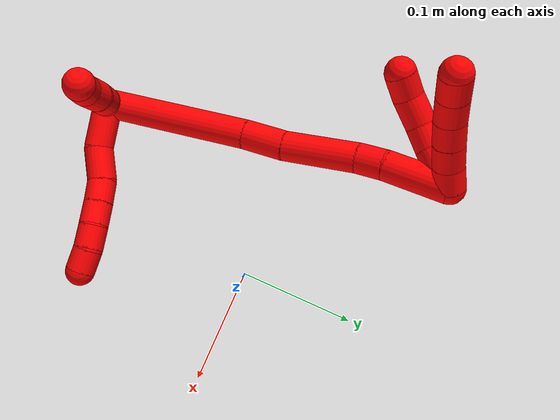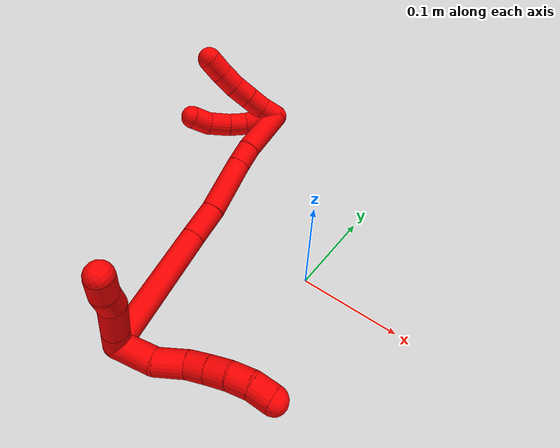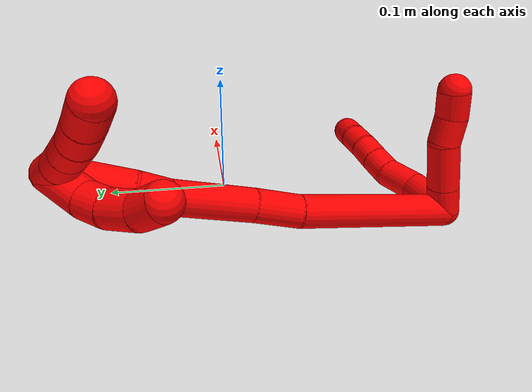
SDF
<sdf version="1.7">
 <world name="default">
  <model name="2">
   <static>0</static>
   <link name="2">
    <collision name="collision-cylinder-e_1_2_8">
     <pose>0.017766 0.00372 -0.008662 -2.73595 1.08297 -2.48267</pose>
     <geometry><cylinder><radius>0.0125</radius><length>0.040224</length></cylinder></geometry>
     <surface>
      <friction><ode><mu>1.16</mu><mu2>1.16</mu2><slip1>0</slip1><slip2>0</slip2></ode></friction>
      <contact><ode><kp>1e+06</kp><kd>1</kd><max_vel>0</max_vel><min_depth>0.001</min_depth></ode></contact>
     </surface>
    </collision>
    <visual name="visual-cylinder-e_1_2_8">
     <pose>0.017766 0.00372 -0.008662 -2.73595 1.08297 -2.48267</pose>
     <geometry><cylinder><radius>0.0125</radius><length>0.040224</length></cylinder></geometry>
     <material><ambient>1 0 0 1</ambient></material>
    </visual>
    <collision name="collision-cylinder-e_2_8_9">
     <pose>0.047241 0.014655 -0.022384 -2.18246 0.925559 -1.5293</pose>
     <geometry><cylinder><radius>0.0125</radius><length>0.02931</length></cylinder></geometry>
     <surface>
      <friction><ode><mu>1.16</mu><mu2>1.16</mu2><slip1>0</slip1><slip2>0</slip2></ode></friction>
      <contact><ode><kp>1e+06</kp><kd>1</kd><max_vel>0</max_vel><min_depth>0.001</min_depth></ode></contact>
     </surface>
    </collision>
    <visual name="visual-cylinder-e_2_8_9">
     <pose>0.047241 0.014655 -0.022384 -2.18246 0.925559 -1.5293</pose>
     <geometry><cylinder><radius>0.0125</radius><length>0.02931</length></cylinder></geometry>
     <material><ambient>1 0 0 1</ambient></material>
    </visual>
    <collision name="collision-cylinder-e_3_9_10">
     <pose>0.06833 0.024646 -0.029784 -2.27093 1.20162 -1.9491</pose>
     <geometry><cylinder><radius>0.0125</radius><length>0.020115</length></cylinder></geometry>
     <surface>
      <friction><ode><mu>1.16</mu><mu2>1.16</mu2><slip1>0</slip1><slip2>0</slip2></ode></friction>
      <contact><ode><kp>1e+06</kp><kd>1</kd><max_vel>0</max_vel><min_depth>0.001</min_depth></ode></contact>
     </surface>
    </collision>
    <visual name="visual-cylinder-e_3_9_10">
     <pose>0.06833 0.024646 -0.029784 -2.27093 1.20162 -1.9491</pose>
     <geometry><cylinder><radius>0.0125</radius><length>0.020115</length></cylinder></geometry>
     <material><ambient>1 0 0 1</ambient></material>
    </visual>
    <collision name="collision-cylinder-e_4_10_11">
     <pose>0.087164 0.029837 -0.034416 -2.33051 1.23202 -2.05122</pose>
     <geometry><cylinder><radius>0.0125</radius><length>0.020048</length></cylinder></geometry>
     <surface>
      <friction><ode><mu>1.16</mu><mu2>1.16</mu2><slip1>0</slip1><slip2>0</slip2></ode></friction>
      <contact><ode><kp>1e+06</kp><kd>1</kd><max_vel>0</max_vel><min_depth>0.001</min_depth></ode></contact>
     </surface>
    </collision>
    <visual name="visual-cylinder-e_4_10_11">
     <pose>0.087164 0.029837 -0.034416 -2.33051 1.23202 -2.05122</pose>
     <geometry><cylinder><radius>0.0125</radius><length>0.020048</length></cylinder></geometry>
     <material><ambient>1 0 0 1</ambient></material>
    </visual>
    <collision name="collision-cylinder-e_5_11_12">
     <pose>0.105824 0.034129 -0.040404 -2.67153 1.14796 -2.43225</pose>
     <geometry><cylinder><radius>0.0125</radius><length>0.02019</length></cylinder></geometry>
     <surface>
      <friction><ode><mu>1.16</mu><mu2>1.16</mu2><slip1>0</slip1><slip2>0</slip2></ode></friction>
      <contact><ode><kp>1e+06</kp><kd>1</kd><max_vel>0</max_vel><min_depth>0.001</min_depth></ode></contact>
     </surface>
    </collision>
    <visual name="visual-cylinder-e_5_11_12">
     <pose>0.105824 0.034129 -0.040404 -2.67153 1.14796 -2.43225</pose>
     <geometry><cylinder><radius>0.0125</radius><length>0.02019</length></cylinder></geometry>
     <material><ambient>1 0 0 1</ambient></material>
    </visual>
    <collision name="collision-cylinder-e_6_12_6">
     <pose>0.123772 0.036248 -0.049062 -3.0926 1.05376 -3.0574</pose>
     <geometry><cylinder><radius>0.0125</radius><length>0.020112</length></cylinder></geometry>
     <surface>
      <friction><ode><mu>1.16</mu><mu2>1.16</mu2><slip1>0</slip1><slip2>0</slip2></ode></friction>
      <contact><ode><kp>1e+06</kp><kd>1</kd><max_vel>0</max_vel><min_depth>0.001</min_depth></ode></contact>
     </surface>
    </collision>
    <visual name="visual-cylinder-e_6_12_6">
     <pose>0.123772 0.036248 -0.049062 -3.0926 1.05376 -3.0574</pose>
     <geometry><cylinder><radius>0.0125</radius><length>0.020112</length></cylinder></geometry>
     <material><ambient>1 0 0 1</ambient></material>
    </visual>
    <collision name="collision-cylinder-e_1_2_13">
     <pose>0.005235 0.001854 0.009107 -0.200787 0.512972 -0.052824</pose>
     <geometry><cylinder><radius>0.0125</radius><length>0.021333</length></cylinder></geometry>
     <surface>
      <friction><ode><mu>1.16</mu><mu2>1.16</mu2><slip1>0</slip1><slip2>0</slip2></ode></friction>
      <contact><ode><kp>1e+06</kp><kd>1</kd><max_vel>0</max_vel><min_depth>0.001</min_depth></ode></contact>
     </surface>
    </collision>
    <visual name="visual-cylinder-e_1_2_13">
     <pose>0.005235 0.001854 0.009107 -0.200787 0.512972 -0.052824</pose>
     <geometry><cylinder><radius>0.0125</radius><length>0.021333</length></cylinder></geometry>
     <material><ambient>1 0 0 1</ambient></material>
    </visual>
    <collision name="collision-cylinder-e_2_13_14">
     <pose>0.019453 0.006775 0.033769 -0.194724 0.515509 -0.051484</pose>
     <geometry><cylinder><radius>0.0125</radius><length>0.036445</length></cylinder></geometry>
     <surface>
      <friction><ode><mu>1.16</mu><mu2>1.16</mu2><slip1>0</slip1><slip2>0</slip2></ode></friction>
      <contact><ode><kp>1e+06</kp><kd>1</kd><max_vel>0</max_vel><min_depth>0.001</min_depth></ode></contact>
     </surface>
    </collision>
    <visual name="visual-cylinder-e_2_13_14">
     <pose>0.019453 0.006775 0.033769 -0.194724 0.515509 -0.051484</pose>
     <geometry><cylinder><radius>0.0125</radius><length>0.036445</length></cylinder></geometry>
     <material><ambient>1 0 0 1</ambient></material>
    </visual>
    <collision name="collision-cylinder-e_3_14_15">
     <pose>0.033826 0.008581 0.05859 0.13528 0.522794 0.036241</pose>
     <geometry><cylinder><radius>0.0125</radius><length>0.021588</length></cylinder></geometry>
     <surface>
      <friction><ode><mu>1.16</mu><mu2>1.16</mu2><slip1>0</slip1><slip2>0</slip2></ode></friction>
      <contact><ode><kp>1e+06</kp><kd>1</kd><max_vel>0</max_vel><min_depth>0.001</min_depth></ode></contact>
     </surface>
    </collision>
    <visual name="visual-cylinder-e_3_14_15">
     <pose>0.033826 0.008581 0.05859 0.13528 0.522794 0.036241</pose>
     <geometry><cylinder><radius>0.0125</radius><length>0.021588</length></cylinder></geometry>
     <material><ambient>1 0 0 1</ambient></material>
    </visual>
    <collision name="collision-cylinder-e_4_15_5">
     <pose>0.043786 0.008474 0.077034 -0.125097 0.458946 -0.029257</pose>
     <geometry><cylinder><radius>0.0125</radius><length>0.020634</length></cylinder></geometry>
     <surface>
      <friction><ode><mu>1.16</mu><mu2>1.16</mu2><slip1>0</slip1><slip2>0</slip2></ode></friction>
      <contact><ode><kp>1e+06</kp><kd>1</kd><max_vel>0</max_vel><min_depth>0.001</min_depth></ode></contact>
     </surface>
    </collision>
    <visual name="visual-cylinder-e_4_15_5">
     <pose>0.043786 0.008474 0.077034 -0.125097 0.458946 -0.029257</pose>
     <geometry><cylinder><radius>0.0125</radius><length>0.020634</length></cylinder></geometry>
     <material><ambient>1 0 0 1</ambient></material>
    </visual>
    <collision name="collision-cylinder-e_1_2_16">
     <pose>-0.005019 0.062102 0.008862 -1.42905 -0.079834 0.06926</pose>
     <geometry><cylinder><radius>0.0125</radius><length>0.125863</length></cylinder></geometry>
     <surface>
      <friction><ode><mu>1.16</mu><mu2>1.16</mu2><slip1>0</slip1><slip2>0</slip2></ode></friction>
      <contact><ode><kp>1e+06</kp><kd>1</kd><max_vel>0</max_vel><min_depth>0.001</min_depth></ode></contact>
     </surface>
    </collision>
    <visual name="visual-cylinder-e_1_2_16">
     <pose>-0.005019 0.062102 0.008862 -1.42905 -0.079834 0.06926</pose>
     <geometry><cylinder><radius>0.0125</radius><length>0.125863</length></cylinder></geometry>
     <material><ambient>1 0 0 1</ambient></material>
    </visual>
    <collision name="collision-cylinder-e_2_16_17">
     <pose>-0.009357 0.141758 0.02139 -1.36491 0.037913 -0.030815</pose>
     <geometry><cylinder><radius>0.0125</radius><length>0.035892</length></cylinder></geometry>
     <surface>
      <friction><ode><mu>1.16</mu><mu2>1.16</mu2><slip1>0</slip1><slip2>0</slip2></ode></friction>
      <contact><ode><kp>1e+06</kp><kd>1</kd><max_vel>0</max_vel><min_depth>0.001</min_depth></ode></contact>
     </surface>
    </collision>
    <visual name="visual-cylinder-e_2_16_17">
     <pose>-0.009357 0.141758 0.02139 -1.36491 0.037913 -0.030815</pose>
     <geometry><cylinder><radius>0.0125</radius><length>0.035892</length></cylinder></geometry>
     <material><ambient>1 0 0 1</ambient></material>
    </visual>
    <collision name="collision-cylinder-e_3_17_18">
     <pose>-0.010447 0.189141 0.033361 -1.29926 -0.057087 0.043369</pose>
     <geometry><cylinder><radius>0.0125</radius><length>0.062027</length></cylinder></geometry>
     <surface>
      <friction><ode><mu>1.16</mu><mu2>1.16</mu2><slip1>0</slip1><slip2>0</slip2></ode></friction>
      <contact><ode><kp>1e+06</kp><kd>1</kd><max_vel>0</max_vel><min_depth>0.001</min_depth></ode></contact>
     </surface>
    </collision>
    <visual name="visual-cylinder-e_3_17_18">
     <pose>-0.010447 0.189141 0.033361 -1.29926 -0.057087 0.043369</pose>
     <geometry><cylinder><radius>0.0125</radius><length>0.062027</length></cylinder></geometry>
     <material><ambient>1 0 0 1</ambient></material>
    </visual>
    <collision name="collision-cylinder-e_4_18_19">
     <pose>-0.011216 0.229885 0.045264 -1.25238 0.086755 -0.062768</pose>
     <geometry><cylinder><radius>0.0125</radius><length>0.023075</length></cylinder></geometry>
     <surface>
      <friction><ode><mu>1.16</mu><mu2>1.16</mu2><slip1>0</slip1><slip2>0</slip2></ode></friction>
      <contact><ode><kp>1e+06</kp><kd>1</kd><max_vel>0</max_vel><min_depth>0.001</min_depth></ode></contact>
     </surface>
    </collision>
    <visual name="visual-cylinder-e_4_18_19">
     <pose>-0.011216 0.229885 0.045264 -1.25238 0.086755 -0.062768</pose>
     <geometry><cylinder><radius>0.0125</radius><length>0.023075</length></cylinder></geometry>
     <material><ambient>1 0 0 1</ambient></material>
    </visual>
    <collision name="collision-cylinder-e_5_19_1">
     <pose>-0.007352 0.26673 0.053918 -1.3782 0.108037 -0.089032</pose>
     <geometry><cylinder><radius>0.0125</radius><length>0.053143</length></cylinder></geometry>
     <surface>
      <friction><ode><mu>1.16</mu><mu2>1.16</mu2><slip1>0</slip1><slip2>0</slip2></ode></friction>
      <contact><ode><kp>1e+06</kp><kd>1</kd><max_vel>0</max_vel><min_depth>0.001</min_depth></ode></contact>
     </surface>
    </collision>
    <visual name="visual-cylinder-e_5_19_1">
     <pose>-0.007352 0.26673 0.053918 -1.3782 0.108037 -0.089032</pose>
     <geometry><cylinder><radius>0.0125</radius><length>0.053143</length></cylinder></geometry>
     <material><ambient>1 0 0 1</ambient></material>
    </visual>
    <collision name="collision-cylinder-e_1_1_20">
     <pose>-0.007967 0.288341 0.067296 0.478628 -0.355483 -0.087603</pose>
     <geometry><cylinder><radius>0.0125</radius><length>0.02</length></cylinder></geometry>
     <surface>
      <friction><ode><mu>1.16</mu><mu2>1.16</mu2><slip1>0</slip1><slip2>0</slip2></ode></friction>
      <contact><ode><kp>1e+06</kp><kd>1</kd><max_vel>0</max_vel><min_depth>0.001</min_depth></ode></contact>
     </surface>
    </collision>
    <visual name="visual-cylinder-e_1_1_20">
     <pose>-0.007967 0.288341 0.067296 0.478628 -0.355483 -0.087603</pose>
     <geometry><cylinder><radius>0.0125</radius><length>0.02</length></cylinder></geometry>
     <material><ambient>1 0 0 1</ambient></material>
    </visual>
    <collision name="collision-cylinder-e_2_20_21">
     <pose>-0.014171 0.280445 0.084549 0.381 -0.275888 -0.053529</pose>
     <geometry><cylinder><radius>0.0125</radius><length>0.02</length></cylinder></geometry>
     <surface>
      <friction><ode><mu>1.16</mu><mu2>1.16</mu2><slip1>0</slip1><slip2>0</slip2></ode></friction>
      <contact><ode><kp>1e+06</kp><kd>1</kd><max_vel>0</max_vel><min_depth>0.001</min_depth></ode></contact>
     </surface>
    </collision>
    <visual name="visual-cylinder-e_2_20_21">
     <pose>-0.014171 0.280445 0.084549 0.381 -0.275888 -0.053529</pose>
     <geometry><cylinder><radius>0.0125</radius><length>0.02</length></cylinder></geometry>
     <material><ambient>1 0 0 1</ambient></material>
    </visual>
    <collision name="collision-cylinder-e_3_21_22">
     <pose>-0.019764 0.273475 0.10244 0.362002 -0.290985 -0.053617</pose>
     <geometry><cylinder><radius>0.0125</radius><length>0.02</length></cylinder></geometry>
     <surface>
      <friction><ode><mu>1.16</mu><mu2>1.16</mu2><slip1>0</slip1><slip2>0</slip2></ode></friction>
      <contact><ode><kp>1e+06</kp><kd>1</kd><max_vel>0</max_vel><min_depth>0.001</min_depth></ode></contact>
     </surface>
    </collision>
    <visual name="visual-cylinder-e_3_21_22">
     <pose>-0.019764 0.273475 0.10244 0.362002 -0.290985 -0.053617</pose>
     <geometry><cylinder><radius>0.0125</radius><length>0.02</length></cylinder></geometry>
     <material><ambient>1 0 0 1</ambient></material>
    </visual>
    <collision name="collision-cylinder-e_4_22_23">
     <pose>-0.024677 0.267349 0.120798 0.282973 -0.205855 -0.029423</pose>
     <geometry><cylinder><radius>0.0125</radius><length>0.02</length></cylinder></geometry>
     <surface>
      <friction><ode><mu>1.16</mu><mu2>1.16</mu2><slip1>0</slip1><slip2>0</slip2></ode></friction>
      <contact><ode><kp>1e+06</kp><kd>1</kd><max_vel>0</max_vel><min_depth>0.001</min_depth></ode></contact>
     </surface>
    </collision>
    <visual name="visual-cylinder-e_4_22_23">
     <pose>-0.024677 0.267349 0.120798 0.282973 -0.205855 -0.029423</pose>
     <geometry><cylinder><radius>0.0125</radius><length>0.02</length></cylinder></geometry>
     <material><ambient>1 0 0 1</ambient></material>
    </visual>
    <collision name="collision-cylinder-e_5_23_4">
     <pose>-0.028033 0.262101 0.139787 0.256505 -0.131525 -0.016986</pose>
     <geometry><cylinder><radius>0.0125</radius><length>0.02</length></cylinder></geometry>
     <surface>
      <friction><ode><mu>1.16</mu><mu2>1.16</mu2><slip1>0</slip1><slip2>0</slip2></ode></friction>
      <contact><ode><kp>1e+06</kp><kd>1</kd><max_vel>0</max_vel><min_depth>0.001</min_depth></ode></contact>
     </surface>
    </collision>
    <visual name="visual-cylinder-e_5_23_4">
     <pose>-0.028033 0.262101 0.139787 0.256505 -0.131525 -0.016986</pose>
     <geometry><cylinder><radius>0.0125</radius><length>0.02</length></cylinder></geometry>
     <material><ambient>1 0 0 1</ambient></material>
    </visual>
    <collision name="collision-cylinder-e_1_1_24">
     <pose>-0.016819 0.280718 0.061805 1.3381 -0.787908 -0.635122</pose>
     <geometry><cylinder><radius>0.0125</radius><length>0.034796</length></cylinder></geometry>
     <surface>
      <friction><ode><mu>1.16</mu><mu2>1.16</mu2><slip1>0</slip1><slip2>0</slip2></ode></friction>
      <contact><ode><kp>1e+06</kp><kd>1</kd><max_vel>0</max_vel><min_depth>0.001</min_depth></ode></contact>
     </surface>
    </collision>
    <visual name="visual-cylinder-e_1_1_24">
     <pose>-0.016819 0.280718 0.061805 1.3381 -0.787908 -0.635122</pose>
     <geometry><cylinder><radius>0.0125</radius><length>0.034796</length></cylinder></geometry>
     <material><ambient>1 0 0 1</ambient></material>
    </visual>
    <collision name="collision-cylinder-e_2_24_25">
     <pose>-0.035254 0.261682 0.068503 1.07161 -0.646703 -0.392811</pose>
     <geometry><cylinder><radius>0.0125</radius><length>0.020252</length></cylinder></geometry>
     <surface>
      <friction><ode><mu>1.16</mu><mu2>1.16</mu2><slip1>0</slip1><slip2>0</slip2></ode></friction>
      <contact><ode><kp>1e+06</kp><kd>1</kd><max_vel>0</max_vel><min_depth>0.001</min_depth></ode></contact>
     </surface>
    </collision>
    <visual name="visual-cylinder-e_2_24_25">
     <pose>-0.035254 0.261682 0.068503 1.07161 -0.646703 -0.392811</pose>
     <geometry><cylinder><radius>0.0125</radius><length>0.020252</length></cylinder></geometry>
     <material><ambient>1 0 0 1</ambient></material>
    </visual>
    <collision name="collision-cylinder-e_3_25_26">
     <pose>-0.046699 0.245659 0.079007 0.931671 -0.447871 -0.22801</pose>
     <geometry><cylinder><radius>0.0125</radius><length>0.024681</length></cylinder></geometry>
     <surface>
      <friction><ode><mu>1.16</mu><mu2>1.16</mu2><slip1>0</slip1><slip2>0</slip2></ode></friction>
      <contact><ode><kp>1e+06</kp><kd>1</kd><max_vel>0</max_vel><min_depth>0.001</min_depth></ode></contact>
     </surface>
    </collision>
    <visual name="visual-cylinder-e_3_25_26">
     <pose>-0.046699 0.245659 0.079007 0.931671 -0.447871 -0.22801</pose>
     <geometry><cylinder><radius>0.0125</radius><length>0.024681</length></cylinder></geometry>
     <material><ambient>1 0 0 1</ambient></material>
    </visual>
    <collision name="collision-cylinder-e_4_26_3">
     <pose>-0.054576 0.230677 0.093366 0.664784 -0.252542 -0.087588</pose>
     <geometry><cylinder><radius>0.0125</radius><length>0.020271</length></cylinder></geometry>
     <surface>
      <friction><ode><mu>1.16</mu><mu2>1.16</mu2><slip1>0</slip1><slip2>0</slip2></ode></friction>
      <contact><ode><kp>1e+06</kp><kd>1</kd><max_vel>0</max_vel><min_depth>0.001</min_depth></ode></contact>
     </surface>
    </collision>
    <visual name="visual-cylinder-e_4_26_3">
     <pose>-0.054576 0.230677 0.093366 0.664784 -0.252542 -0.087588</pose>
     <geometry><cylinder><radius>0.0125</radius><length>0.020271</length></cylinder></geometry>
     <material><ambient>1 0 0 1</ambient></material>
    </visual>
    <collision name="collision-sphere-3">
     <pose>-0.057109 0.224623 0.10109 0 -0 0</pose>
     <geometry><sphere><radius>0.0125</radius></sphere></geometry>
     <surface>
      <friction><ode><mu>1.16</mu><mu2>1.16</mu2><slip1>0</slip1><slip2>0</slip2></ode></friction>
      <contact><ode><kp>1e+06</kp><kd>1</kd><max_vel>0</max_vel><min_depth>0.001</min_depth></ode></contact>
     </surface>
    </collision>
    <visual name="visual-sphere-3">
     <pose>-0.057109 0.224623 0.10109 0 -0 0</pose>
     <geometry><sphere><radius>0.0125</radius></sphere></geometry>
     <material><ambient>1 0 0 1</ambient></material>
    </visual>
    <collision name="collision-sphere-26">
     <pose>-0.052044 0.236731 0.085642 0 -0 0</pose>
     <geometry><sphere><radius>0.0125</radius></sphere></geometry>
     <surface>
      <friction><ode><mu>1.16</mu><mu2>1.16</mu2><slip1>0</slip1><slip2>0</slip2></ode></friction>
      <contact><ode><kp>1e+06</kp><kd>1</kd><max_vel>0</max_vel><min_depth>0.001</min_depth></ode></contact>
     </surface>
    </collision>
    <visual name="visual-sphere-26">
     <pose>-0.052044 0.236731 0.085642 0 -0 0</pose>
     <geometry><sphere><radius>0.0125</radius></sphere></geometry>
     <material><ambient>1 0 0 1</ambient></material>
    </visual>
    <collision name="collision-sphere-25">
     <pose>-0.041355 0.254587 0.072372 0 -0 0</pose>
     <geometry><sphere><radius>0.0125</radius></sphere></geometry>
     <surface>
      <friction><ode><mu>1.16</mu><mu2>1.16</mu2><slip1>0</slip1><slip2>0</slip2></ode></friction>
      <contact><ode><kp>1e+06</kp><kd>1</kd><max_vel>0</max_vel><min_depth>0.001</min_depth></ode></contact>
     </surface>
    </collision>
    <visual name="visual-sphere-25">
     <pose>-0.041355 0.254587 0.072372 0 -0 0</pose>
     <geometry><sphere><radius>0.0125</radius></sphere></geometry>
     <material><ambient>1 0 0 1</ambient></material>
    </visual>
    <collision name="collision-sphere-24">
     <pose>-0.029152 0.268778 0.064634 0 -0 0</pose>
     <geometry><sphere><radius>0.0125</radius></sphere></geometry>
     <surface>
      <friction><ode><mu>1.16</mu><mu2>1.16</mu2><slip1>0</slip1><slip2>0</slip2></ode></friction>
      <contact><ode><kp>1e+06</kp><kd>1</kd><max_vel>0</max_vel><min_depth>0.001</min_depth></ode></contact>
     </surface>
    </collision>
    <visual name="visual-sphere-24">
     <pose>-0.029152 0.268778 0.064634 0 -0 0</pose>
     <geometry><sphere><radius>0.0125</radius></sphere></geometry>
     <material><ambient>1 0 0 1</ambient></material>
    </visual>
    <collision name="collision-sphere-4">
     <pose>-0.029344 0.259586 0.149376 0 -0 0</pose>
     <geometry><sphere><radius>0.0125</radius></sphere></geometry>
     <surface>
      <friction><ode><mu>1.16</mu><mu2>1.16</mu2><slip1>0</slip1><slip2>0</slip2></ode></friction>
      <contact><ode><kp>1e+06</kp><kd>1</kd><max_vel>0</max_vel><min_depth>0.001</min_depth></ode></contact>
     </surface>
    </collision>
    <visual name="visual-sphere-4">
     <pose>-0.029344 0.259586 0.149376 0 -0 0</pose>
     <geometry><sphere><radius>0.0125</radius></sphere></geometry>
     <material><ambient>1 0 0 1</ambient></material>
    </visual>
    <collision name="collision-sphere-23">
     <pose>-0.026721 0.264616 0.130198 0 -0 0</pose>
     <geometry><sphere><radius>0.0125</radius></sphere></geometry>
     <surface>
      <friction><ode><mu>1.16</mu><mu2>1.16</mu2><slip1>0</slip1><slip2>0</slip2></ode></friction>
      <contact><ode><kp>1e+06</kp><kd>1</kd><max_vel>0</max_vel><min_depth>0.001</min_depth></ode></contact>
     </surface>
    </collision>
    <visual name="visual-sphere-23">
     <pose>-0.026721 0.264616 0.130198 0 -0 0</pose>
     <geometry><sphere><radius>0.0125</radius></sphere></geometry>
     <material><ambient>1 0 0 1</ambient></material>
    </visual>
    <collision name="collision-sphere-22">
     <pose>-0.022633 0.270082 0.111399 0 -0 0</pose>
     <geometry><sphere><radius>0.0125</radius></sphere></geometry>
     <surface>
      <friction><ode><mu>1.16</mu><mu2>1.16</mu2><slip1>0</slip1><slip2>0</slip2></ode></friction>
      <contact><ode><kp>1e+06</kp><kd>1</kd><max_vel>0</max_vel><min_depth>0.001</min_depth></ode></contact>
     </surface>
    </collision>
    <visual name="visual-sphere-22">
     <pose>-0.022633 0.270082 0.111399 0 -0 0</pose>
     <geometry><sphere><radius>0.0125</radius></sphere></geometry>
     <material><ambient>1 0 0 1</ambient></material>
    </visual>
    <collision name="collision-sphere-21">
     <pose>-0.016895 0.276867 0.093481 0 -0 0</pose>
     <geometry><sphere><radius>0.0125</radius></sphere></geometry>
     <surface>
      <friction><ode><mu>1.16</mu><mu2>1.16</mu2><slip1>0</slip1><slip2>0</slip2></ode></friction>
      <contact><ode><kp>1e+06</kp><kd>1</kd><max_vel>0</max_vel><min_depth>0.001</min_depth></ode></contact>
     </surface>
    </collision>
    <visual name="visual-sphere-21">
     <pose>-0.016895 0.276867 0.093481 0 -0 0</pose>
     <geometry><sphere><radius>0.0125</radius></sphere></geometry>
     <material><ambient>1 0 0 1</ambient></material>
    </visual>
    <collision name="collision-sphere-20">
     <pose>-0.011447 0.284023 0.075617 0 -0 0</pose>
     <geometry><sphere><radius>0.0125</radius></sphere></geometry>
     <surface>
      <friction><ode><mu>1.16</mu><mu2>1.16</mu2><slip1>0</slip1><slip2>0</slip2></ode></friction>
      <contact><ode><kp>1e+06</kp><kd>1</kd><max_vel>0</max_vel><min_depth>0.001</min_depth></ode></contact>
     </surface>
    </collision>
    <visual name="visual-sphere-20">
     <pose>-0.011447 0.284023 0.075617 0 -0 0</pose>
     <geometry><sphere><radius>0.0125</radius></sphere></geometry>
     <material><ambient>1 0 0 1</ambient></material>
    </visual>
    <collision name="collision-sphere-12">
     <pose>0.11503 0.036005 -0.044097 0 -0 0</pose>
     <geometry><sphere><radius>0.0125</radius></sphere></geometry>
     <surface>
      <friction><ode><mu>1.16</mu><mu2>1.16</mu2><slip1>0</slip1><slip2>0</slip2></ode></friction>
      <contact><ode><kp>1e+06</kp><kd>1</kd><max_vel>0</max_vel><min_depth>0.001</min_depth></ode></contact>
     </surface>
    </collision>
    <visual name="visual-sphere-12">
     <pose>0.11503 0.036005 -0.044097 0 -0 0</pose>
     <geometry><sphere><radius>0.0125</radius></sphere></geometry>
     <material><ambient>1 0 0 1</ambient></material>
    </visual>
    <collision name="collision-sphere-11">
     <pose>0.096618 0.032252 -0.036711 0 -0 0</pose>
     <geometry><sphere><radius>0.0125</radius></sphere></geometry>
     <surface>
      <friction><ode><mu>1.16</mu><mu2>1.16</mu2><slip1>0</slip1><slip2>0</slip2></ode></friction>
      <contact><ode><kp>1e+06</kp><kd>1</kd><max_vel>0</max_vel><min_depth>0.001</min_depth></ode></contact>
     </surface>
    </collision>
    <visual name="visual-sphere-11">
     <pose>0.096618 0.032252 -0.036711 0 -0 0</pose>
     <geometry><sphere><radius>0.0125</radius></sphere></geometry>
     <material><ambient>1 0 0 1</ambient></material>
    </visual>
    <collision name="collision-sphere-10">
     <pose>0.077709 0.027421 -0.032122 0 -0 0</pose>
     <geometry><sphere><radius>0.0125</radius></sphere></geometry>
     <surface>
      <friction><ode><mu>1.16</mu><mu2>1.16</mu2><slip1>0</slip1><slip2>0</slip2></ode></friction>
      <contact><ode><kp>1e+06</kp><kd>1</kd><max_vel>0</max_vel><min_depth>0.001</min_depth></ode></contact>
     </surface>
    </collision>
    <visual name="visual-sphere-10">
     <pose>0.077709 0.027421 -0.032122 0 -0 0</pose>
     <geometry><sphere><radius>0.0125</radius></sphere></geometry>
     <material><ambient>1 0 0 1</ambient></material>
    </visual>
    <collision name="collision-sphere-9">
     <pose>0.05895 0.021871 -0.027445 0 -0 0</pose>
     <geometry><sphere><radius>0.0125</radius></sphere></geometry>
     <surface>
      <friction><ode><mu>1.16</mu><mu2>1.16</mu2><slip1>0</slip1><slip2>0</slip2></ode></friction>
      <contact><ode><kp>1e+06</kp><kd>1</kd><max_vel>0</max_vel><min_depth>0.001</min_depth></ode></contact>
     </surface>
    </collision>
    <visual name="visual-sphere-9">
     <pose>0.05895 0.021871 -0.027445 0 -0 0</pose>
     <geometry><sphere><radius>0.0125</radius></sphere></geometry>
     <material><ambient>1 0 0 1</ambient></material>
    </visual>
    <collision name="collision-sphere-2">
     <geometry><sphere><radius>0.0125</radius></sphere></geometry>
     <surface>
      <friction><ode><mu>1.16</mu><mu2>1.16</mu2><slip1>0</slip1><slip2>0</slip2></ode></friction>
      <contact><ode><kp>1e+06</kp><kd>1</kd><max_vel>0</max_vel><min_depth>0.001</min_depth></ode></contact>
     </surface>
    </collision>
    <visual name="visual-sphere-2">
     <geometry><sphere><radius>0.0125</radius></sphere></geometry>
     <material><ambient>1 0 0 1</ambient></material>
    </visual>
    <collision name="collision-sphere-19">
     <pose>-0.010217 0.240802 0.048862 0 -0 0</pose>
     <geometry><sphere><radius>0.0125</radius></sphere></geometry>
     <surface>
      <friction><ode><mu>1.16</mu><mu2>1.16</mu2><slip1>0</slip1><slip2>0</slip2></ode></friction>
      <contact><ode><kp>1e+06</kp><kd>1</kd><max_vel>0</max_vel><min_depth>0.001</min_depth></ode></contact>
     </surface>
    </collision>
    <visual name="visual-sphere-19">
     <pose>-0.010217 0.240802 0.048862 0 -0 0</pose>
     <geometry><sphere><radius>0.0125</radius></sphere></geometry>
     <material><ambient>1 0 0 1</ambient></material>
    </visual>
    <collision name="collision-sphere-8">
     <pose>0.035532 0.00744 -0.017323 0 -0 0</pose>
     <geometry><sphere><radius>0.0125</radius></sphere></geometry>
     <surface>
      <friction><ode><mu>1.16</mu><mu2>1.16</mu2><slip1>0</slip1><slip2>0</slip2></ode></friction>
      <contact><ode><kp>1e+06</kp><kd>1</kd><max_vel>0</max_vel><min_depth>0.001</min_depth></ode></contact>
     </surface>
    </collision>
    <visual name="visual-sphere-8">
     <pose>0.035532 0.00744 -0.017323 0 -0 0</pose>
     <geometry><sphere><radius>0.0125</radius></sphere></geometry>
     <material><ambient>1 0 0 1</ambient></material>
    </visual>
    <collision name="collision-sphere-6">
     <pose>0.132514 0.036492 -0.054027 0 -0 0</pose>
     <geometry><sphere><radius>0.0125</radius></sphere></geometry>
     <surface>
      <friction><ode><mu>1.16</mu><mu2>1.16</mu2><slip1>0</slip1><slip2>0</slip2></ode></friction>
      <contact><ode><kp>1e+06</kp><kd>1</kd><max_vel>0</max_vel><min_depth>0.001</min_depth></ode></contact>
     </surface>
    </collision>
    <visual name="visual-sphere-6">
     <pose>0.132514 0.036492 -0.054027 0 -0 0</pose>
     <geometry><sphere><radius>0.0125</radius></sphere></geometry>
     <material><ambient>1 0 0 1</ambient></material>
    </visual>
    <collision name="collision-sphere-13">
     <pose>0.01047 0.003707 0.018214 0 -0 0</pose>
     <geometry><sphere><radius>0.0125</radius></sphere></geometry>
     <surface>
      <friction><ode><mu>1.16</mu><mu2>1.16</mu2><slip1>0</slip1><slip2>0</slip2></ode></friction>
      <contact><ode><kp>1e+06</kp><kd>1</kd><max_vel>0</max_vel><min_depth>0.001</min_depth></ode></contact>
     </surface>
    </collision>
    <visual name="visual-sphere-13">
     <pose>0.01047 0.003707 0.018214 0 -0 0</pose>
     <geometry><sphere><radius>0.0125</radius></sphere></geometry>
     <material><ambient>1 0 0 1</ambient></material>
    </visual>
    <collision name="collision-sphere-14">
     <pose>0.028436 0.009843 0.049324 0 -0 0</pose>
     <geometry><sphere><radius>0.0125</radius></sphere></geometry>
     <surface>
      <friction><ode><mu>1.16</mu><mu2>1.16</mu2><slip1>0</slip1><slip2>0</slip2></ode></friction>
      <contact><ode><kp>1e+06</kp><kd>1</kd><max_vel>0</max_vel><min_depth>0.001</min_depth></ode></contact>
     </surface>
    </collision>
    <visual name="visual-sphere-14">
     <pose>0.028436 0.009843 0.049324 0 -0 0</pose>
     <geometry><sphere><radius>0.0125</radius></sphere></geometry>
     <material><ambient>1 0 0 1</ambient></material>
    </visual>
    <collision name="collision-sphere-15">
     <pose>0.039215 0.00732 0.067857 0 -0 0</pose>
     <geometry><sphere><radius>0.0125</radius></sphere></geometry>
     <surface>
      <friction><ode><mu>1.16</mu><mu2>1.16</mu2><slip1>0</slip1><slip2>0</slip2></ode></friction>
      <contact><ode><kp>1e+06</kp><kd>1</kd><max_vel>0</max_vel><min_depth>0.001</min_depth></ode></contact>
     </surface>
    </collision>
    <visual name="visual-sphere-15">
     <pose>0.039215 0.00732 0.067857 0 -0 0</pose>
     <geometry><sphere><radius>0.0125</radius></sphere></geometry>
     <material><ambient>1 0 0 1</ambient></material>
    </visual>
    <collision name="collision-sphere-5">
     <pose>0.048356 0.009628 0.086211 0 -0 0</pose>
     <geometry><sphere><radius>0.0125</radius></sphere></geometry>
     <surface>
      <friction><ode><mu>1.16</mu><mu2>1.16</mu2><slip1>0</slip1><slip2>0</slip2></ode></friction>
      <contact><ode><kp>1e+06</kp><kd>1</kd><max_vel>0</max_vel><min_depth>0.001</min_depth></ode></contact>
     </surface>
    </collision>
    <visual name="visual-sphere-5">
     <pose>0.048356 0.009628 0.086211 0 -0 0</pose>
     <geometry><sphere><radius>0.0125</radius></sphere></geometry>
     <material><ambient>1 0 0 1</ambient></material>
    </visual>
    <collision name="collision-sphere-16">
     <pose>-0.010038 0.124204 0.017724 0 -0 0</pose>
     <geometry><sphere><radius>0.0125</radius></sphere></geometry>
     <surface>
      <friction><ode><mu>1.16</mu><mu2>1.16</mu2><slip1>0</slip1><slip2>0</slip2></ode></friction>
      <contact><ode><kp>1e+06</kp><kd>1</kd><max_vel>0</max_vel><min_depth>0.001</min_depth></ode></contact>
     </surface>
    </collision>
    <visual name="visual-sphere-16">
     <pose>-0.010038 0.124204 0.017724 0 -0 0</pose>
     <geometry><sphere><radius>0.0125</radius></sphere></geometry>
     <material><ambient>1 0 0 1</ambient></material>
    </visual>
    <collision name="collision-sphere-17">
     <pose>-0.008677 0.159312 0.025056 0 -0 0</pose>
     <geometry><sphere><radius>0.0125</radius></sphere></geometry>
     <surface>
      <friction><ode><mu>1.16</mu><mu2>1.16</mu2><slip1>0</slip1><slip2>0</slip2></ode></friction>
      <contact><ode><kp>1e+06</kp><kd>1</kd><max_vel>0</max_vel><min_depth>0.001</min_depth></ode></contact>
     </surface>
    </collision>
    <visual name="visual-sphere-17">
     <pose>-0.008677 0.159312 0.025056 0 -0 0</pose>
     <geometry><sphere><radius>0.0125</radius></sphere></geometry>
     <material><ambient>1 0 0 1</ambient></material>
    </visual>
    <collision name="collision-sphere-18">
     <pose>-0.012216 0.218969 0.041665 0 -0 0</pose>
     <geometry><sphere><radius>0.0125</radius></sphere></geometry>
     <surface>
      <friction><ode><mu>1.16</mu><mu2>1.16</mu2><slip1>0</slip1><slip2>0</slip2></ode></friction>
      <contact><ode><kp>1e+06</kp><kd>1</kd><max_vel>0</max_vel><min_depth>0.001</min_depth></ode></contact>
     </surface>
    </collision>
    <visual name="visual-sphere-18">
     <pose>-0.012216 0.218969 0.041665 0 -0 0</pose>
     <geometry><sphere><radius>0.0125</radius></sphere></geometry>
     <material><ambient>1 0 0 1</ambient></material>
    </visual>
    <collision name="collision-sphere-1">
     <pose>-0.004486 0.292659 0.058975 0 -0 0</pose>
     <geometry><sphere><radius>0.0125</radius></sphere></geometry>
     <surface>
      <friction><ode><mu>1.16</mu><mu2>1.16</mu2><slip1>0</slip1><slip2>0</slip2></ode></friction>
      <contact><ode><kp>1e+06</kp><kd>1</kd><max_vel>0</max_vel><min_depth>0.001</min_depth></ode></contact>
     </surface>
    </collision>
    <visual name="visual-sphere-1">
     <pose>-0.004486 0.292659 0.058975 0 -0 0</pose>
     <geometry><sphere><radius>0.0125</radius></sphere></geometry>
     <material><ambient>1 0 0 1</ambient></material>
    </visual>
    <inertial>
     <pose>0.006115 0.134792 0.034298 0 -0 0</pose>
     <mass>0.75</mass>
     <inertia>
      <ixx>0.000243</ixx>
      <ixy>0</ixy>
      <ixz>0</ixz>
      <iyy>9.4e-05</iyy>
      <iyz>0</iyz>
      <izz>-0.000189</izz>
     </inertia>
    </inertial>
   </link>
   <pose>-0.087087 -0.169475 0.011498 0.092494 -0.441645 -0.003397</pose>
  </model>
 </world>
</sdf>
